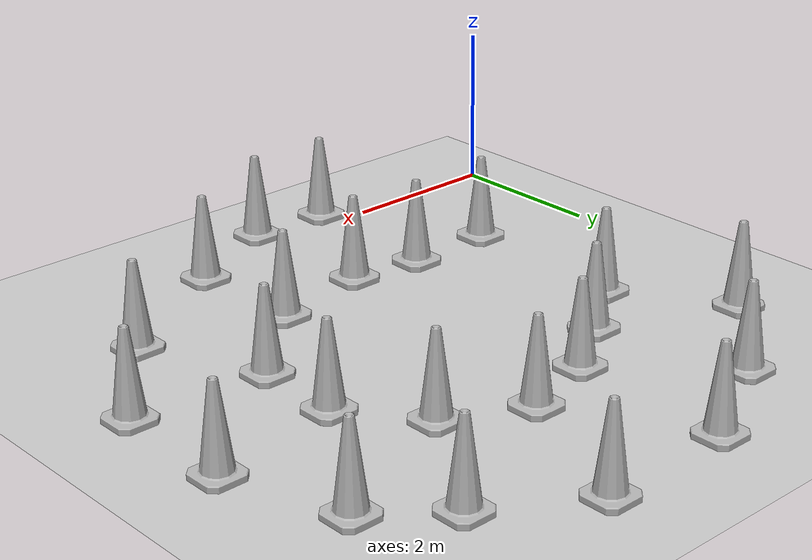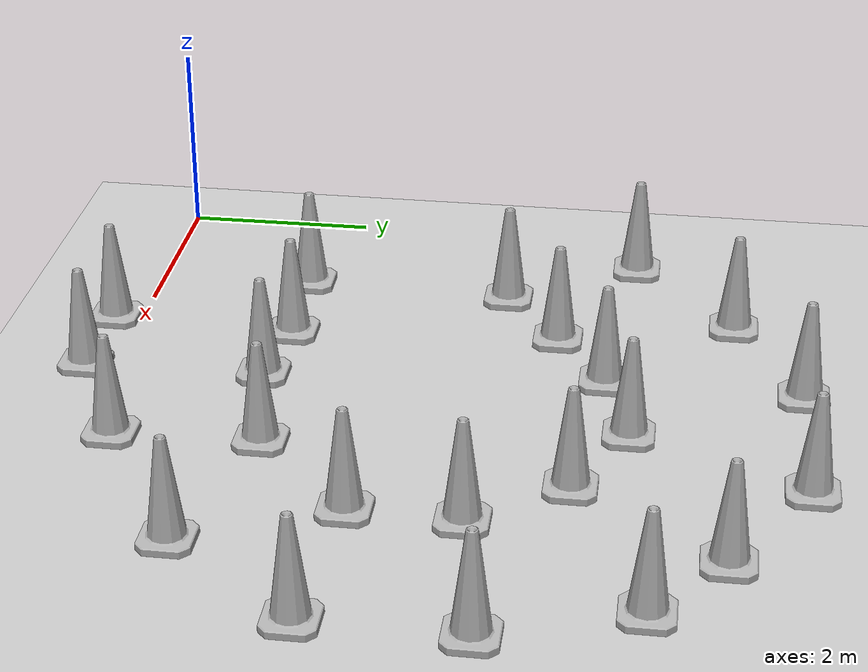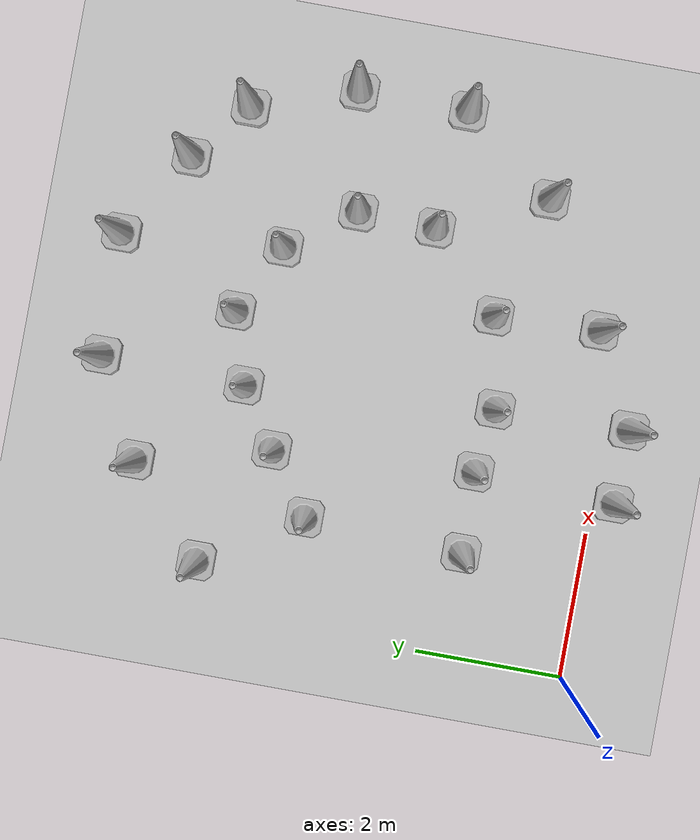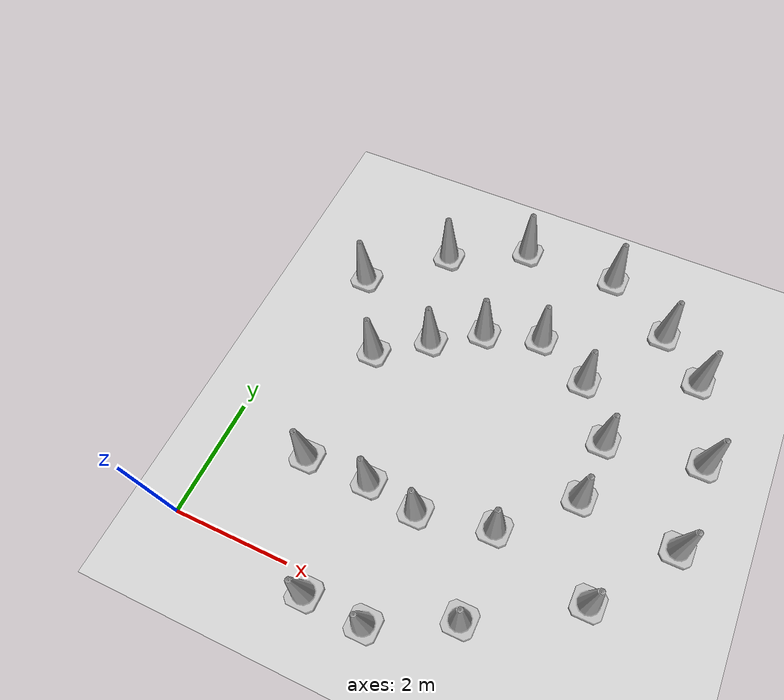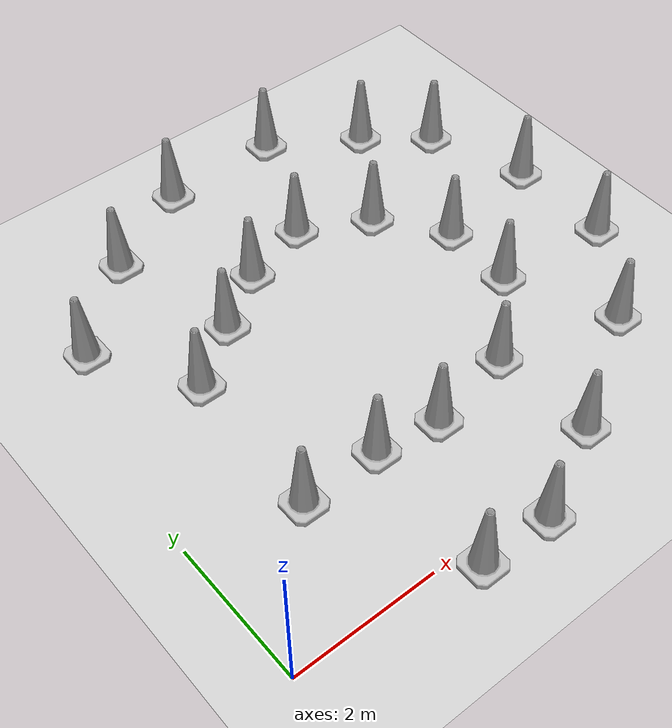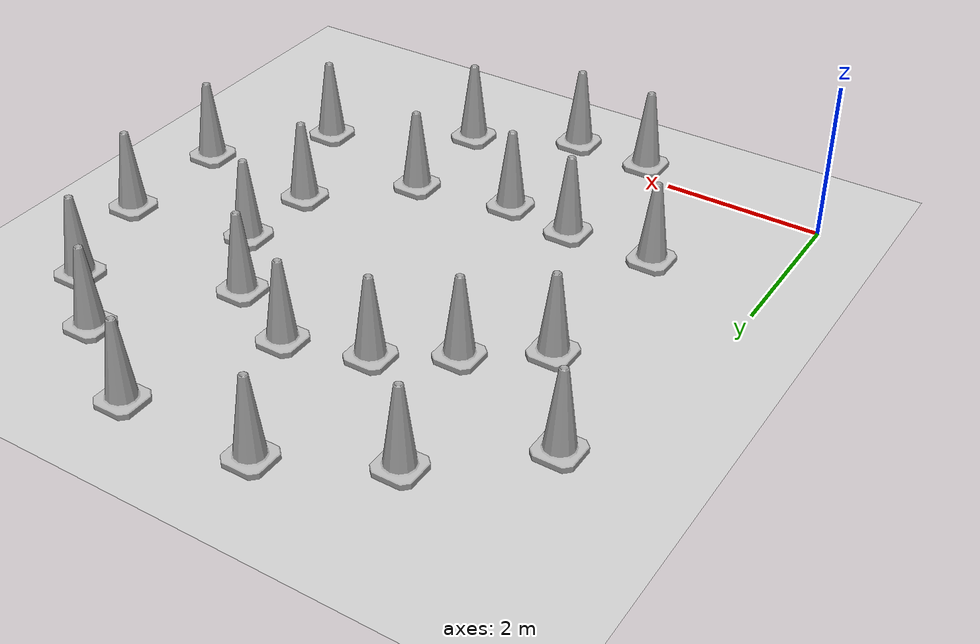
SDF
<sdf version="1.7">
 <world name="default">
  <light name="sun" type="directional">
   <pose>0 0 10 0 -0 0</pose>
   <diffuse>0.8 0.8 0.8 1</diffuse>
   <specular>0.2 0.2 0.2 1</specular>
   <attenuation>
    <range>1000</range>
    <constant>0.9</constant>
    <linear>0.01</linear>
    <quadratic>0.001</quadratic>
   </attenuation>
   <direction>-0.5 0.1 -0.9</direction>
   <spot><inner_angle>0</inner_angle><outer_angle>0</outer_angle><falloff>0</falloff></spot>
  </light>
  <model name="ground_plane">
   <static>1</static>
   <link name="link">
    <collision name="collision">
     <geometry><plane><normal>0 0 1</normal><size>100 100</size></plane></geometry>
     <surface><friction><ode><mu>100</mu><mu2>50</mu2></ode></friction></surface>
    </collision>
    <visual name="visual">
     <cast_shadows>0</cast_shadows>
     <geometry><plane><normal>0 0 1</normal><size>100 100</size></plane></geometry>
     <material>
      <script><uri>file://media/materials/scripts/gazebo.material</uri><name>Gazebo/Grey</name></script>
     </material>
    </visual>
   </link>
  </model>
  <gravity>0 0 -9.8</gravity>
  <magnetic_field>6e-06 2.3e-05 -4.2e-05</magnetic_field>
  <atmosphere type="adiabatic"/>
  <physics type="ode">
   <max_step_size>0.001</max_step_size>
   <real_time_factor>1</real_time_factor>
   <real_time_update_rate>1000</real_time_update_rate>
  </physics>
  <scene><ambient>0.4 0.4 0.4 1</ambient><background>0.7 0.7 0.7 1</background><shadows>1</shadows></scene>
  <audio><device>default</device></audio>
  <spherical_coordinates>
   <surface_model>EARTH_WGS84</surface_model>
   <latitude_deg>0</latitude_deg>
   <longitude_deg>0</longitude_deg>
   <elevation>0</elevation>
   <heading_deg>0</heading_deg>
  </spherical_coordinates>
  <model name="Construction Cone">
   <link name="link">
    <collision name="collision">
     <geometry>
      <mesh><scale>10 10 10</scale><uri>model://construction_cone/meshes/construction_cone.dae</uri></mesh>
     </geometry>
    </collision>
    <visual name="visual">
     <geometry>
      <mesh><scale>10 10 10</scale><uri>model://construction_cone/meshes/construction_cone.dae</uri></mesh>
     </geometry>
    </visual>
    <inertial>
     <inertia><ixx>1</ixx><ixy>0</ixy><ixz>0</ixz><iyy>1</iyy><iyz>0</iyz><izz>1</izz></inertia>
     <mass>1</mass>
    </inertial>
   </link>
   <pose>1.43845 1.6355 -0 0 -0 0</pose>
  </model>
  <model name="Construction Cone_0">
   <link name="link">
    <collision name="collision">
     <geometry>
      <mesh><scale>10 10 10</scale><uri>model://construction_cone/meshes/construction_cone.dae</uri></mesh>
     </geometry>
    </collision>
    <visual name="visual">
     <geometry>
      <mesh><scale>10 10 10</scale><uri>model://construction_cone/meshes/construction_cone.dae</uri></mesh>
     </geometry>
    </visual>
    <inertial>
     <inertia><ixx>1</ixx><ixy>0</ixy><ixz>0</ixz><iyy>1</iyy><iyz>0</iyz><izz>1</izz></inertia>
     <mass>1</mass>
    </inertial>
   </link>
   <pose>3.44801 1.52745 0 -0 -0 -0</pose>
  </model>
  <model name="Construction Cone_1">
   <link name="link">
    <collision name="collision">
     <geometry>
      <mesh><scale>10 10 10</scale><uri>model://construction_cone/meshes/construction_cone.dae</uri></mesh>
     </geometry>
    </collision>
    <visual name="visual">
     <geometry>
      <mesh><scale>10 10 10</scale><uri>model://construction_cone/meshes/construction_cone.dae</uri></mesh>
     </geometry>
    </visual>
    <inertial>
     <inertia><ixx>1</ixx><ixy>0</ixy><ixz>0</ixz><iyy>1</iyy><iyz>0</iyz><izz>1</izz></inertia>
     <mass>1</mass>
    </inertial>
   </link>
   <pose>3.48964 -0.316402 -0 0 -0 0</pose>
  </model>
  <model name="Construction Cone_2">
   <link name="link">
    <collision name="collision">
     <geometry>
      <mesh><scale>10 10 10</scale><uri>model://construction_cone/meshes/construction_cone.dae</uri></mesh>
     </geometry>
    </collision>
    <visual name="visual">
     <geometry>
      <mesh><scale>10 10 10</scale><uri>model://construction_cone/meshes/construction_cone.dae</uri></mesh>
     </geometry>
    </visual>
    <inertial>
     <inertia><ixx>1</ixx><ixy>0</ixy><ixz>0</ixz><iyy>1</iyy><iyz>0</iyz><izz>1</izz></inertia>
     <mass>1</mass>
    </inertial>
   </link>
   <pose>4.69675 1.76797 0 -0 -0 -0</pose>
  </model>
  <model name="Construction Cone_3">
   <link name="link">
    <collision name="collision">
     <geometry>
      <mesh><scale>10 10 10</scale><uri>model://construction_cone/meshes/construction_cone.dae</uri></mesh>
     </geometry>
    </collision>
    <visual name="visual">
     <geometry>
      <mesh><scale>10 10 10</scale><uri>model://construction_cone/meshes/construction_cone.dae</uri></mesh>
     </geometry>
    </visual>
    <inertial>
     <inertia><ixx>1</ixx><ixy>0</ixy><ixz>0</ixz><iyy>1</iyy><iyz>0</iyz><izz>1</izz></inertia>
     <mass>1</mass>
    </inertial>
   </link>
   <pose>4.75487 0.310702 -1e-06 2e-06 1e-06 0</pose>
  </model>
  <model name="Construction Cone_4">
   <link name="link">
    <collision name="collision">
     <geometry>
      <mesh><scale>10 10 10</scale><uri>model://construction_cone/meshes/construction_cone.dae</uri></mesh>
     </geometry>
    </collision>
    <visual name="visual">
     <geometry>
      <mesh><scale>10 10 10</scale><uri>model://construction_cone/meshes/construction_cone.dae</uri></mesh>
     </geometry>
    </visual>
    <inertial>
     <inertia><ixx>1</ixx><ixy>0</ixy><ixz>0</ixz><iyy>1</iyy><iyz>0</iyz><izz>1</izz></inertia>
     <mass>1</mass>
    </inertial>
   </link>
   <pose>5.73475 2.76653 -0 -0 -0 -0</pose>
  </model>
  <model name="Construction Cone_5">
   <link name="link">
    <collision name="collision">
     <geometry>
      <mesh><scale>10 10 10</scale><uri>model://construction_cone/meshes/construction_cone.dae</uri></mesh>
     </geometry>
    </collision>
    <visual name="visual">
     <geometry>
      <mesh><scale>10 10 10</scale><uri>model://construction_cone/meshes/construction_cone.dae</uri></mesh>
     </geometry>
    </visual>
    <inertial>
     <inertia><ixx>1</ixx><ixy>0</ixy><ixz>0</ixz><iyy>1</iyy><iyz>0</iyz><izz>1</izz></inertia>
     <mass>1</mass>
    </inertial>
   </link>
   <pose>6.39584 1.29486 -0 0 -0 0</pose>
  </model>
  <model name="Construction Cone_6">
   <link name="link">
    <collision name="collision">
     <geometry>
      <mesh><scale>10 10 10</scale><uri>model://construction_cone/meshes/construction_cone.dae</uri></mesh>
     </geometry>
    </collision>
    <visual name="visual">
     <geometry>
      <mesh><scale>10 10 10</scale><uri>model://construction_cone/meshes/construction_cone.dae</uri></mesh>
     </geometry>
    </visual>
    <inertial>
     <inertia><ixx>1</ixx><ixy>0</ixy><ixz>0</ixz><iyy>1</iyy><iyz>0</iyz><izz>1</izz></inertia>
     <mass>1</mass>
    </inertial>
   </link>
   <pose>5.76802 3.84274 -0 0 -0 0</pose>
  </model>
  <model name="Construction Cone_7">
   <link name="link">
    <collision name="collision">
     <geometry>
      <mesh><scale>10 10 10</scale><uri>model://construction_cone/meshes/construction_cone.dae</uri></mesh>
     </geometry>
    </collision>
    <visual name="visual">
     <geometry>
      <mesh><scale>10 10 10</scale><uri>model://construction_cone/meshes/construction_cone.dae</uri></mesh>
     </geometry>
    </visual>
    <inertial>
     <inertia><ixx>1</ixx><ixy>0</ixy><ixz>0</ixz><iyy>1</iyy><iyz>0</iyz><izz>1</izz></inertia>
     <mass>1</mass>
    </inertial>
   </link>
   <pose>7.38238 2.60712 -0 0 -0 0</pose>
  </model>
  <model name="Construction Cone_8">
   <link name="link">
    <collision name="collision">
     <geometry>
      <mesh><scale>10 10 10</scale><uri>model://construction_cone/meshes/construction_cone.dae</uri></mesh>
     </geometry>
    </collision>
    <visual name="visual">
     <geometry>
      <mesh><scale>10 10 10</scale><uri>model://construction_cone/meshes/construction_cone.dae</uri></mesh>
     </geometry>
    </visual>
    <inertial>
     <inertia><ixx>1</ixx><ixy>0</ixy><ixz>0</ixz><iyy>1</iyy><iyz>0</iyz><izz>1</izz></inertia>
     <mass>1</mass>
    </inertial>
   </link>
   <pose>7.39364 4.11689 -0 0 -0 0</pose>
  </model>
  <model name="Construction Cone_9">
   <link name="link">
    <collision name="collision">
     <geometry>
      <mesh><scale>10 10 10</scale><uri>model://construction_cone/meshes/construction_cone.dae</uri></mesh>
     </geometry>
    </collision>
    <visual name="visual">
     <geometry>
      <mesh><scale>10 10 10</scale><uri>model://construction_cone/meshes/construction_cone.dae</uri></mesh>
     </geometry>
    </visual>
    <inertial>
     <inertia><ixx>1</ixx><ixy>0</ixy><ixz>0</ixz><iyy>1</iyy><iyz>0</iyz><izz>1</izz></inertia>
     <mass>1</mass>
    </inertial>
   </link>
   <pose>6.91338 5.53941 -0 0 -0 0</pose>
  </model>
  <model name="Construction Cone_10">
   <link name="link">
    <collision name="collision">
     <geometry>
      <mesh><scale>10 10 10</scale><uri>model://construction_cone/meshes/construction_cone.dae</uri></mesh>
     </geometry>
    </collision>
    <visual name="visual">
     <geometry>
      <mesh><scale>10 10 10</scale><uri>model://construction_cone/meshes/construction_cone.dae</uri></mesh>
     </geometry>
    </visual>
    <inertial>
     <inertia><ixx>1</ixx><ixy>0</ixy><ixz>0</ixz><iyy>1</iyy><iyz>0</iyz><izz>1</izz></inertia>
     <mass>1</mass>
    </inertial>
   </link>
   <pose>5.11123 4.76171 -0 0 -1e-06 0</pose>
  </model>
  <model name="Construction Cone_11">
   <link name="link">
    <collision name="collision">
     <geometry>
      <mesh><scale>10 10 10</scale><uri>model://construction_cone/meshes/construction_cone.dae</uri></mesh>
     </geometry>
    </collision>
    <visual name="visual">
     <geometry>
      <mesh><scale>10 10 10</scale><uri>model://construction_cone/meshes/construction_cone.dae</uri></mesh>
     </geometry>
    </visual>
    <inertial>
     <inertia><ixx>1</ixx><ixy>0</ixy><ixz>0</ixz><iyy>1</iyy><iyz>0</iyz><izz>1</izz></inertia>
     <mass>1</mass>
    </inertial>
   </link>
   <pose>4.14321 5.24715 0 -0 -0 -0</pose>
  </model>
  <model name="Construction Cone_12">
   <link name="link">
    <collision name="collision">
     <geometry>
      <mesh><scale>10 10 10</scale><uri>model://construction_cone/meshes/construction_cone.dae</uri></mesh>
     </geometry>
    </collision>
    <visual name="visual">
     <geometry>
      <mesh><scale>10 10 10</scale><uri>model://construction_cone/meshes/construction_cone.dae</uri></mesh>
     </geometry>
    </visual>
    <inertial>
     <inertia><ixx>1</ixx><ixy>0</ixy><ixz>0</ixz><iyy>1</iyy><iyz>0</iyz><izz>1</izz></inertia>
     <mass>1</mass>
    </inertial>
   </link>
   <pose>6.1028 6.21122 -0 0 -0 0</pose>
  </model>
  <model name="Construction Cone_13">
   <link name="link">
    <collision name="collision">
     <geometry>
      <mesh><scale>10 10 10</scale><uri>model://construction_cone/meshes/construction_cone.dae</uri></mesh>
     </geometry>
    </collision>
    <visual name="visual">
     <geometry>
      <mesh><scale>10 10 10</scale><uri>model://construction_cone/meshes/construction_cone.dae</uri></mesh>
     </geometry>
    </visual>
    <inertial>
     <inertia><ixx>1</ixx><ixy>0</ixy><ixz>0</ixz><iyy>1</iyy><iyz>0</iyz><izz>1</izz></inertia>
     <mass>1</mass>
    </inertial>
   </link>
   <pose>4.90997 6.96891 -0 0 -0 0</pose>
  </model>
  <model name="Construction Cone_14">
   <link name="link">
    <collision name="collision">
     <geometry>
      <mesh><scale>10 10 10</scale><uri>model://construction_cone/meshes/construction_cone.dae</uri></mesh>
     </geometry>
    </collision>
    <visual name="visual">
     <geometry>
      <mesh><scale>10 10 10</scale><uri>model://construction_cone/meshes/construction_cone.dae</uri></mesh>
     </geometry>
    </visual>
    <inertial>
     <inertia><ixx>1</ixx><ixy>0</ixy><ixz>0</ixz><iyy>1</iyy><iyz>0</iyz><izz>1</izz></inertia>
     <mass>1</mass>
    </inertial>
   </link>
   <pose>3.16299 4.95581 -0 0 -0 0</pose>
  </model>
  <model name="Construction Cone_15">
   <link name="link">
    <collision name="collision">
     <geometry>
      <mesh><scale>10 10 10</scale><uri>model://construction_cone/meshes/construction_cone.dae</uri></mesh>
     </geometry>
    </collision>
    <visual name="visual">
     <geometry>
      <mesh><scale>10 10 10</scale><uri>model://construction_cone/meshes/construction_cone.dae</uri></mesh>
     </geometry>
    </visual>
    <inertial>
     <inertia><ixx>1</ixx><ixy>0</ixy><ixz>0</ixz><iyy>1</iyy><iyz>0</iyz><izz>1</izz></inertia>
     <mass>1</mass>
    </inertial>
   </link>
   <pose>3.2239 6.93246 0 -0 -0 -0</pose>
  </model>
  <model name="Construction Cone_16">
   <link name="link">
    <collision name="collision">
     <geometry>
      <mesh><scale>10 10 10</scale><uri>model://construction_cone/meshes/construction_cone.dae</uri></mesh>
     </geometry>
    </collision>
    <visual name="visual">
     <geometry>
      <mesh><scale>10 10 10</scale><uri>model://construction_cone/meshes/construction_cone.dae</uri></mesh>
     </geometry>
    </visual>
    <inertial>
     <inertia><ixx>1</ixx><ixy>0</ixy><ixz>0</ixz><iyy>1</iyy><iyz>0</iyz><izz>1</izz></inertia>
     <mass>1</mass>
    </inertial>
   </link>
   <pose>1.89667 6.23876 0 -0 -0 -0</pose>
  </model>
  <model name="Construction Cone_17">
   <link name="link">
    <collision name="collision">
     <geometry>
      <mesh><scale>10 10 10</scale><uri>model://construction_cone/meshes/construction_cone.dae</uri></mesh>
     </geometry>
    </collision>
    <visual name="visual">
     <geometry>
      <mesh><scale>10 10 10</scale><uri>model://construction_cone/meshes/construction_cone.dae</uri></mesh>
     </geometry>
    </visual>
    <inertial>
     <inertia><ixx>1</ixx><ixy>0</ixy><ixz>0</ixz><iyy>1</iyy><iyz>0</iyz><izz>1</izz></inertia>
     <mass>1</mass>
    </inertial>
   </link>
   <pose>2.36173 4.42275 0 0 -1e-06 0</pose>
  </model>
  <model name="Construction Cone_18">
   <link name="link">
    <collision name="collision">
     <geometry>
      <mesh><scale>10 10 10</scale><uri>model://construction_cone/meshes/construction_cone.dae</uri></mesh>
     </geometry>
    </collision>
    <visual name="visual">
     <geometry>
      <mesh><scale>10 10 10</scale><uri>model://construction_cone/meshes/construction_cone.dae</uri></mesh>
     </geometry>
    </visual>
    <inertial>
     <inertia><ixx>1</ixx><ixy>0</ixy><ixz>0</ixz><iyy>1</iyy><iyz>0</iyz><izz>1</izz></inertia>
     <mass>1</mass>
    </inertial>
   </link>
   <pose>0.696938 5.16905 -0 0 -0 0</pose>
  </model>
  <model name="Construction Cone_19">
   <link name="link">
    <collision name="collision">
     <geometry>
      <mesh><scale>10 10 10</scale><uri>model://construction_cone/meshes/construction_cone.dae</uri></mesh>
     </geometry>
    </collision>
    <visual name="visual">
     <geometry>
      <mesh><scale>10 10 10</scale><uri>model://construction_cone/meshes/construction_cone.dae</uri></mesh>
     </geometry>
    </visual>
    <inertial>
     <inertia><ixx>1</ixx><ixy>0</ixy><ixz>0</ixz><iyy>1</iyy><iyz>0</iyz><izz>1</izz></inertia>
     <mass>1</mass>
    </inertial>
   </link>
   <pose>1.5347 3.82137 -9e-06 -3e-06 -0 -0</pose>
  </model>
  <model name="Construction Cone_20">
   <link name="link">
    <collision name="collision">
     <geometry>
      <mesh><scale>10 10 10</scale><uri>model://construction_cone/meshes/construction_cone.dae</uri></mesh>
     </geometry>
    </collision>
    <visual name="visual">
     <geometry>
      <mesh><scale>10 10 10</scale><uri>model://construction_cone/meshes/construction_cone.dae</uri></mesh>
     </geometry>
    </visual>
    <inertial>
     <inertia><ixx>1</ixx><ixy>0</ixy><ixz>0</ixz><iyy>1</iyy><iyz>0</iyz><izz>1</izz></inertia>
     <mass>1</mass>
    </inertial>
   </link>
   <pose>2.5582 1.65621 -0 0 -0 0</pose>
  </model>
  <model name="Construction Cone_21">
   <link name="link">
    <collision name="collision">
     <geometry>
      <mesh><scale>10 10 10</scale><uri>model://construction_cone/meshes/construction_cone.dae</uri></mesh>
     </geometry>
    </collision>
    <visual name="visual">
     <geometry>
      <mesh><scale>10 10 10</scale><uri>model://construction_cone/meshes/construction_cone.dae</uri></mesh>
     </geometry>
    </visual>
    <inertial>
     <inertia><ixx>1</ixx><ixy>0</ixy><ixz>0</ixz><iyy>1</iyy><iyz>0</iyz><izz>1</izz></inertia>
     <mass>1</mass>
    </inertial>
   </link>
   <pose>2.47636 -0.282184 -0 0 -0 0</pose>
  </model>
 </world>
</sdf>
